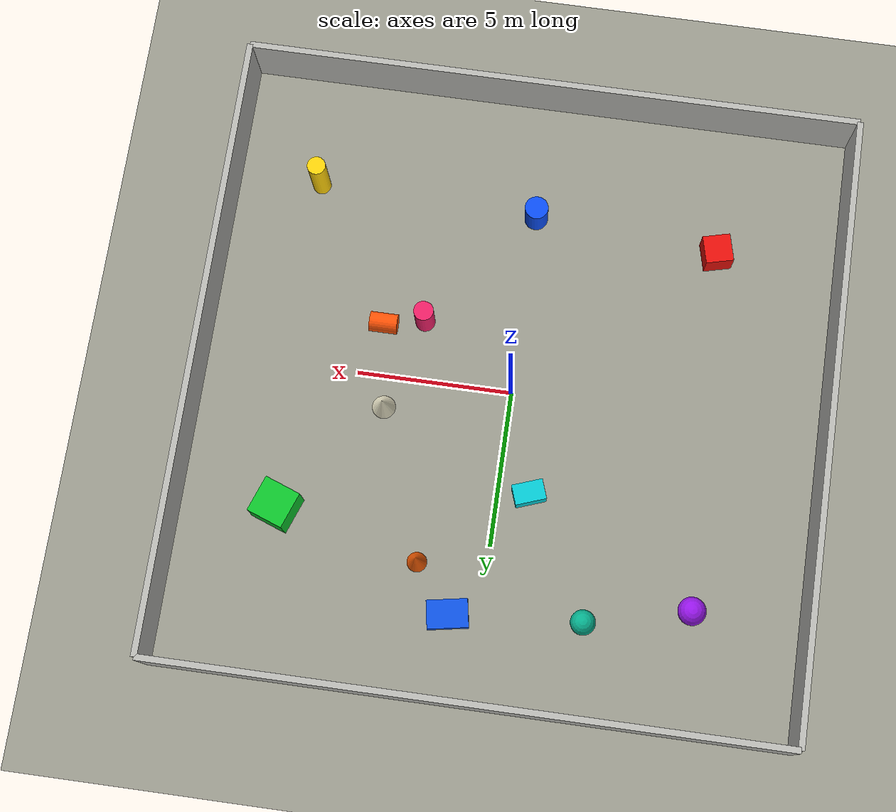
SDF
<?xml version="1.0" ?>
<sdf version="1.8">
  <world name="my_world">
    <physics name="1ms" type="ode">
      <max_step_size>0.001</max_step_size>
      <real_time_factor>1.0</real_time_factor>
      <real_time_update_rate>1000</real_time_update_rate>
    </physics>

    <plugin filename="gz-sim8-physics-system" name="gz::sim::systems::Physics"/>
    <plugin filename="gz-sim8-user-commands-system" name="gz::sim::systems::UserCommands"/>
    <plugin filename="gz-sim8-scene-broadcaster-system" name="gz::sim::systems::SceneBroadcaster"/>
    <plugin filename="gz-sim8-sensors-system" name="gz::sim::systems::Sensors">
      <render_engine>ogre</render_engine>
    </plugin>
    <plugin filename="gz-sim8-imu-system" name="gz::sim::systems::Imu"/>
    <plugin filename="gz-sim8-contact-system" name="gz::sim::systems::Contact"/>

    <scene>
      <ambient>0.55 0.55 0.55 1</ambient>
      <background>0.62 0.73 0.82 1</background>
      <shadows>true</shadows>
    </scene>

    <light name="sun" type="directional">
      <cast_shadows>true</cast_shadows>
      <pose>0 0 20 0.3 0.2 0</pose>
      <diffuse>0.95 0.92 0.85 1</diffuse>
      <specular>0.25 0.25 0.25 1</specular>
      <direction>-0.35 0.2 -0.9</direction>
    </light>

        <!-- ========================================================
         GROUND PLANE
    ======================================================== -->
    <model name="ground_plane">
      <static>true</static>
      <link name="link">
        <collision name="collision">
          <geometry><plane><normal>0 0 1</normal><size>200 200</size></plane></geometry>
          <surface><friction><ode><mu>1.5</mu><mu2>1.5</mu2></ode></friction></surface>
        </collision>
        <visual name="visual">
          <geometry><plane><normal>0 0 1</normal><size>200 200</size></plane></geometry>
          <material>
            <ambient>0.5 0.5 0.45 1</ambient>
            <diffuse>0.6 0.6 0.55 1</diffuse>
          </material>
        </visual>
      </link>
    </model>

    <!-- These seven floor sections leave open holes at both pit locations. -->
    <!-- split around pit_small_a (0.3x0.3m, x[-8.15,-7.85] y[-8.65,-8.35]) -->
    <!-- split around pit_small_d (0.05x0.4m slot, x[-0.025,0.025] y[-3.7,-3.3]) -->
    <!-- split around pit_small_b (0.5x0.4m, x[-8.25,-7.75] y[-1.05,-0.65]) -->
    <!-- split around pit_small_c (0.7x0.7m, x[-2.35,-1.65] y[7.65,8.35]) -->

    <!-- Arena boundaries. -->
    <model name="wall_north"><static>true</static><pose>0 10 1 0 0 0</pose><link name="link"><collision name="collision"><geometry><box><size>20 0.2 2</size></box></geometry></collision><visual name="visual"><geometry><box><size>20 0.2 2</size></box></geometry><material><diffuse>0.72 0.72 0.70 1</diffuse></material></visual></link></model>
    <model name="wall_south"><static>true</static><pose>0 -10 1 0 0 0</pose><link name="link"><collision name="collision"><geometry><box><size>20 0.2 2</size></box></geometry></collision><visual name="visual"><geometry><box><size>20 0.2 2</size></box></geometry><material><diffuse>0.72 0.72 0.70 1</diffuse></material></visual></link></model>
    <model name="wall_east"><static>true</static><pose>10 0 1 0 0 0</pose><link name="link"><collision name="collision"><geometry><box><size>0.2 20 2</size></box></geometry></collision><visual name="visual"><geometry><box><size>0.2 20 2</size></box></geometry><material><diffuse>0.72 0.72 0.70 1</diffuse></material></visual></link></model>
    <model name="wall_west"><static>true</static><pose>-10 0 1 0 0 0</pose><link name="link"><collision name="collision"><geometry><box><size>0.2 20 2</size></box></geometry></collision><visual name="visual"><geometry><box><size>0.2 20 2</size></box></geometry><material><diffuse>0.72 0.72 0.70 1</diffuse></material></visual></link></model>

    <!-- True 1.2m-deep floor openings: no lip, no collision surface at ground level. -->

    <!-- Small pits (5cm-70cm), walls flush with the floor rim and connect straight down to the bottom. -->

    <!-- Large, high-contrast objects provide dependable YOLO targets at varied distances and viewpoints. -->
    <model name="red_crate"><static>true</static><pose>-6 -5.5 0.45 0 0 0.25</pose><link name="link"><collision name="collision"><geometry><box><size>0.9 0.9 0.9</size></box></geometry></collision><visual name="visual"><geometry><box><size>0.9 0.9 0.9</size></box></geometry><material><ambient>0.75 0.04 0.03 1</ambient><diffuse>0.9 0.06 0.04 1</diffuse></material></visual></link></model>
    <model name="blue_barrel"><static>true</static><pose>0 -6 0.55 0 0 0</pose><link name="link"><collision name="collision"><geometry><cylinder><radius>0.38</radius><length>1.1</length></cylinder></geometry></collision><visual name="visual"><geometry><cylinder><radius>0.38</radius><length>1.1</length></cylinder></geometry><material><ambient>0.03 0.20 0.72 1</ambient><diffuse>0.04 0.30 0.95 1</diffuse></material></visual></link></model>
    <model name="green_crate"><static>true</static><pose>6.8 4.7 0.6 0 0 -0.35</pose><link name="link"><collision name="collision"><geometry><box><size>1.2 1.2 1.2</size></box></geometry></collision><visual name="visual"><geometry><box><size>1.2 1.2 1.2</size></box></geometry><material><ambient>0.03 0.55 0.12 1</ambient><diffuse>0.05 0.76 0.17 1</diffuse></material></visual></link></model>
    <model name="orange_cone"><static>true</static><pose>2.2 5.8 0.5 0 0 0</pose><link name="link"><collision name="collision"><geometry><cone><radius>0.32</radius><length>1.0</length></cone></geometry></collision><visual name="visual"><geometry><cone><radius>0.32</radius><length>1.0</length></cone></geometry><material><ambient>0.95 0.28 0.01 1</ambient><diffuse>1 0.38 0.02 1</diffuse></material></visual></link></model>
    <model name="purple_sphere"><static>true</static><pose>-6.5 6.2 0.45 0 0 0</pose><link name="link"><collision name="collision"><geometry><sphere><radius>0.45</radius></sphere></geometry></collision><visual name="visual"><geometry><sphere><radius>0.45</radius></sphere></geometry><material><ambient>0.45 0.06 0.70 1</ambient><diffuse>0.58 0.08 0.9 1</diffuse></material></visual></link></model>
    <model name="yellow_column"><static>true</static><pose>7.2 -6.2 0.9 0 0 0</pose><link name="link"><collision name="collision"><geometry><cylinder><radius>0.3</radius><length>1.8</length></cylinder></geometry></collision><visual name="visual"><geometry><cylinder><radius>0.3</radius><length>1.8</length></cylinder></geometry><material><ambient>0.85 0.68 0.02 1</ambient><diffuse>1 0.82 0.03 1</diffuse></material></visual></link></model>

    <!-- Additional varied obstacles, each with matching collision and visual geometry. -->
    <model name="cyan_low_block"><static>true</static><pose>-1.0 3.2 0.3 0 0 0.35</pose><link name="link"><collision name="collision"><geometry><box><size>1.0 0.65 0.6</size></box></geometry></collision><visual name="visual"><geometry><box><size>1.0 0.65 0.6</size></box></geometry><material><ambient>0.02 0.55 0.58 1</ambient><diffuse>0.02 0.78 0.82 1</diffuse></material></visual></link></model>
    <model name="pink_round_pillar"><static>true</static><pose>3.1 -2.0 0.65 0 0 0</pose><link name="link"><collision name="collision"><geometry><cylinder><radius>0.32</radius><length>1.3</length></cylinder></geometry></collision><visual name="visual"><geometry><cylinder><radius>0.32</radius><length>1.3</length></cylinder></geometry><material><ambient>0.72 0.08 0.3 1</ambient><diffuse>0.92 0.12 0.4 1</diffuse></material></visual></link></model>
    <model name="teal_ball"><static>true</static><pose>-3.2 7.0 0.4 0 0 0</pose><link name="link"><collision name="collision"><geometry><sphere><radius>0.4</radius></sphere></geometry></collision><visual name="visual"><geometry><sphere><radius>0.4</radius></sphere></geometry><material><ambient>0.02 0.42 0.35 1</ambient><diffuse>0.02 0.68 0.55 1</diffuse></material></visual></link></model>
    <model name="white_cone"><static>true</static><pose>4.0 1.0 0.45 0 0 0</pose><link name="link"><collision name="collision"><geometry><cone><radius>0.38</radius><length>0.9</length></cone></geometry></collision><visual name="visual"><geometry><cone><radius>0.38</radius><length>0.9</length></cone></geometry><material><ambient>0.82 0.82 0.74 1</ambient><diffuse>0.96 0.94 0.82 1</diffuse></material></visual></link></model>
    <model name="blue_flat_pallet"><static>true</static><pose>1.0 7.3 0.18 0 0 0.18</pose><link name="link"><collision name="collision"><geometry><box><size>1.3 0.9 0.36</size></box></geometry></collision><visual name="visual"><geometry><box><size>1.3 0.9 0.36</size></box></geometry><material><ambient>0.03 0.18 0.62 1</ambient><diffuse>0.05 0.32 0.88 1</diffuse></material></visual></link></model>
    <model name="orange_horizontal_drum"><static>true</static><pose>4.4 -1.7 0.32 0 1.5708 0</pose><link name="link"><collision name="collision"><geometry><cylinder><radius>0.32</radius><length>0.9</length></cylinder></geometry></collision><visual name="visual"><geometry><cylinder><radius>0.32</radius><length>0.9</length></cylinder></geometry><material><ambient>0.82 0.2 0.01 1</ambient><diffuse>1 0.32 0.02 1</diffuse></material></visual></link></model>

  </world>
</sdf>
